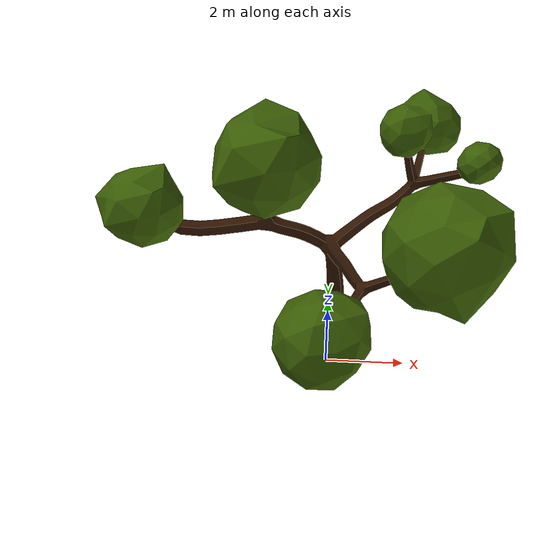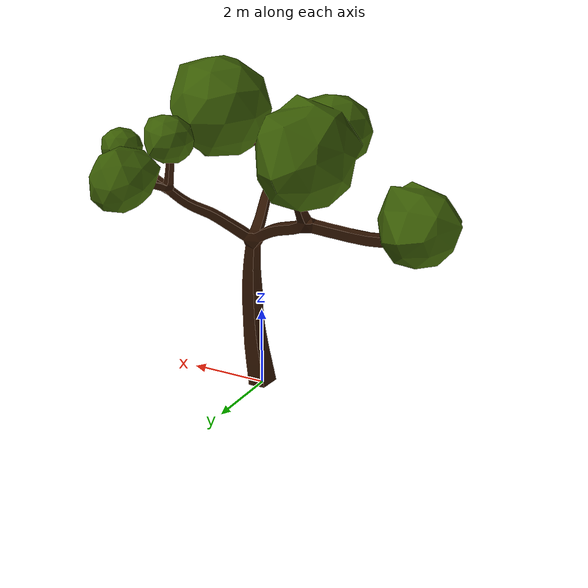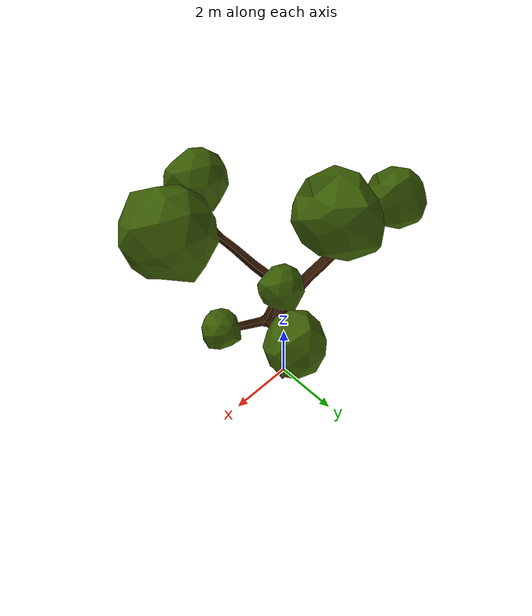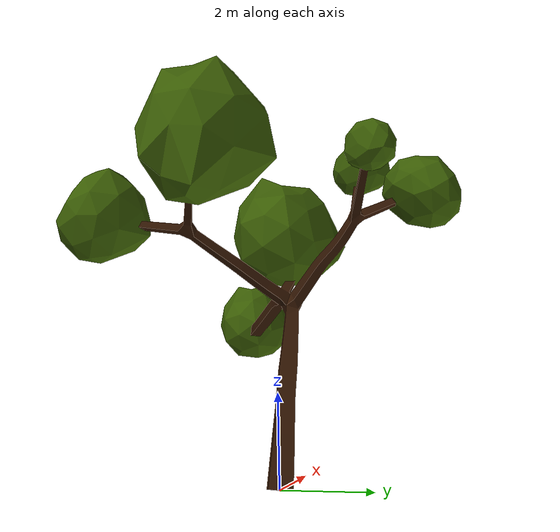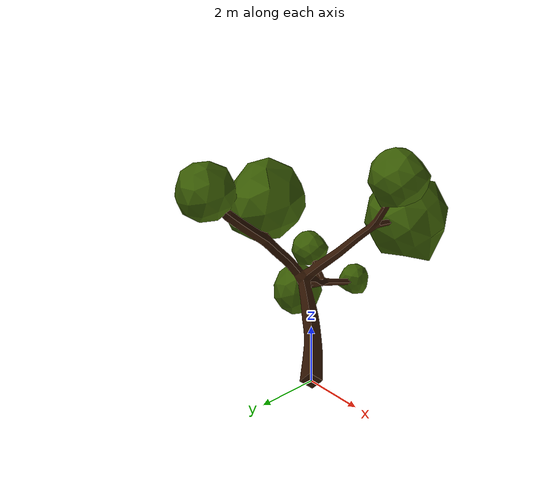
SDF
<?xml version="1.0"?>
<sdf version="1.5">
  <model name="aquabot_tree">
    <static>true</static>
    <link name="link">
      <collision name="collision">
        <pose>0 0 4 0 0 0</pose>
        <geometry>
          <cylinder>
            <radius>4</radius>
            <length>8</length>
          </cylinder>
        </geometry>
      </collision>
      <visual name="visual">
        <pose>0.0 0.0 0.0 0 0 0 </pose>
        <geometry>
          <mesh>
            <uri>mesh/tree.dae</uri>
          </mesh>
        </geometry>
      </visual>
    </link>
  </model>
</sdf>
